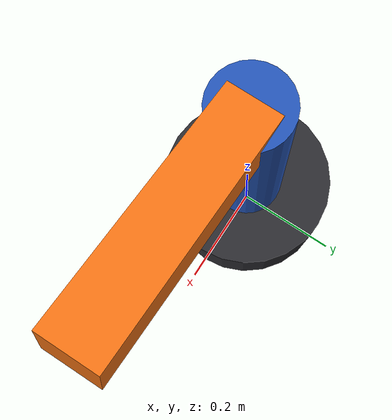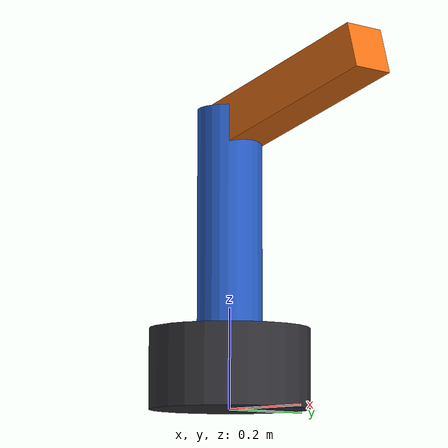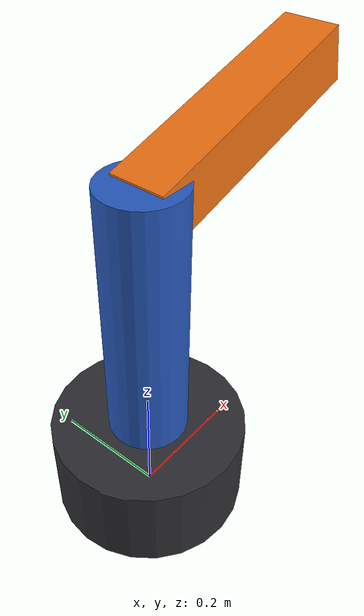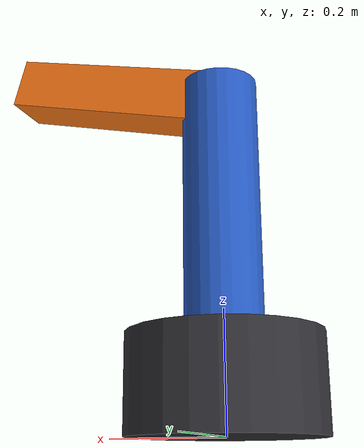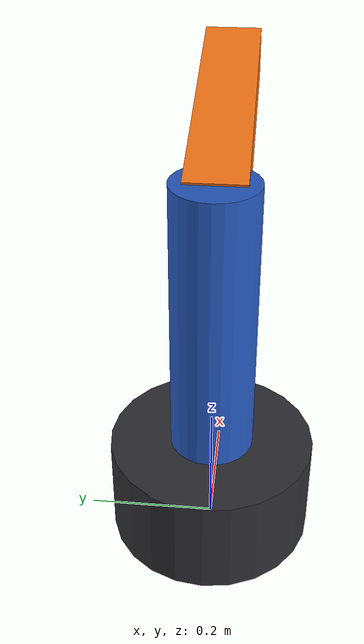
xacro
<?xml version="1.0"?>
<robot xmlns:xacro="http://www.ros.org/wiki/xacro" name="two_joint_robot">

  <xacro:arg name="controllers_file" default=""/>

  <!-- Materials -->
  <material name="blue">
    <color rgba="0.15 0.35 0.75 1.0"/>
  </material>
  <material name="orange">
    <color rgba="0.95 0.45 0.08 1.0"/>
  </material>
  <material name="dark">
    <color rgba="0.18 0.18 0.20 1.0"/>
  </material>

  <!-- World and base -->
  <link name="world"/>

  <link name="base_link">
    <visual>
      <origin xyz="0 0 0.08"/>
      <geometry>
        <cylinder radius="0.16" length="0.16"/>
      </geometry>
      <material name="dark"/>
    </visual>
    <collision>
      <origin xyz="0 0 0.08"/>
      <geometry>
        <cylinder radius="0.16" length="0.16"/>
      </geometry>
    </collision>
    <inertial>
      <origin xyz="0 0 0.08"/>
      <mass value="4.0"/>
      <inertia ixx="0.025" ixy="0" ixz="0"
               iyy="0.025" iyz="0" izz="0.035"/>
    </inertial>
  </link>

  <joint name="world_to_base" type="fixed">
    <parent link="world"/>
    <child link="base_link"/>
    <origin xyz="0 0 0" rpy="0 0 0"/>
  </joint>

  <!-- Link 1: Rotating vertical column -->
  <link name="link1">
    <visual>
      <origin xyz="0 0 0.22"/>
      <geometry>
        <cylinder radius="0.065" length="0.44"/>
      </geometry>
      <material name="blue"/>
    </visual>
    <collision>
      <origin xyz="0 0 0.22"/>
      <geometry>
        <cylinder radius="0.065" length="0.44"/>
      </geometry>
    </collision>
    <inertial>
      <origin xyz="0 0 0.22"/>
      <mass value="2.0"/>
      <inertia ixx="0.035" ixy="0" ixz="0"
               iyy="0.035" iyz="0" izz="0.006"/>
    </inertial>
  </link>

  <!-- Joint 1: Base rotation around Z -->
  <joint name="joint1" type="revolute">
    <parent link="base_link"/>
    <child link="link1"/>
    <origin xyz="0 0 0.16" rpy="0 0 0"/>
    <axis xyz="0 0 1"/>
    <limit lower="-3.14" upper="3.14"
           effort="100.0" velocity="1.0"/>
    <dynamics damping="0.2" friction="0.05"/>
  </joint>

  <!-- Link 2: Upper arm -->
  <link name="link2">
    <visual>
      <origin xyz="0.20 0 0"/>
      <geometry>
        <box size="0.40 0.09 0.09"/>
      </geometry>
      <material name="orange"/>
    </visual>
    <collision>
      <origin xyz="0.20 0 0"/>
      <geometry>
        <box size="0.40 0.09 0.09"/>
      </geometry>
    </collision>
    <inertial>
      <origin xyz="0.20 0 0"/>
      <mass value="1.0"/>
      <inertia ixx="0.002" ixy="0" ixz="0"
               iyy="0.014" iyz="0" izz="0.014"/>
    </inertial>
  </link>

  <!-- Joint 2: Shoulder rotation, tilted 15 degrees upward -->
  <joint name="joint2" type="revolute">
    <parent link="link1"/>
    <child link="link2"/>

    <!-- Mounting position: 15 degrees upward around local Y -->
    <origin xyz="0 0 0.40" rpy="0 -0.261799 0"/>

    <!-- Rotation axis -->
    <axis xyz="0 1 0"/>

    <limit lower="-1.57" upper="1.57"
           effort="100.0" velocity="1.0"/>

    <dynamics damping="0.2" friction="0.05"/>
  </joint>

  <!-- End-effector reference frame at the physical end of link2 -->
  <link name="tool0"/>

  <joint name="link2_to_tool0" type="fixed">
    <parent link="link2"/>
    <child link="tool0"/>
    <origin xyz="0.40 0 0" rpy="0 0 0"/>
  </joint>

  <!-- ROS 2 Control -->
  <ros2_control name="GazeboSystem" type="system">
    <hardware>
      <plugin>gz_ros2_control/GazeboSimSystem</plugin>
    </hardware>

    <joint name="joint1">
      <command_interface name="position"/>
      <state_interface name="position"/>
      <state_interface name="velocity"/>
    </joint>

    <joint name="joint2">
      <command_interface name="position"/>
      <state_interface name="position"/>
      <state_interface name="velocity"/>
    </joint>
  </ros2_control>

  <!-- Gazebo Harmonic Plugin -->
  <gazebo>
    <plugin filename="libgz_ros2_control-system.so"
            name="gz_ros2_control::GazeboSimROS2ControlPlugin">
      <parameters>$(arg controllers_file)</parameters>
    </plugin>
  </gazebo>

</robot>
